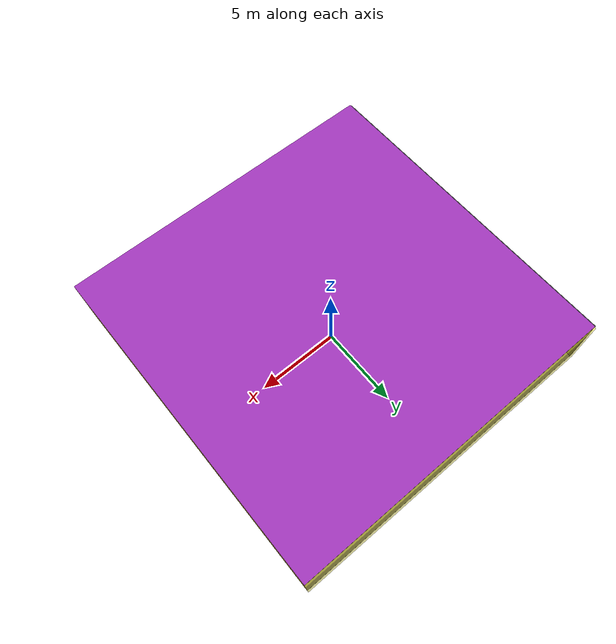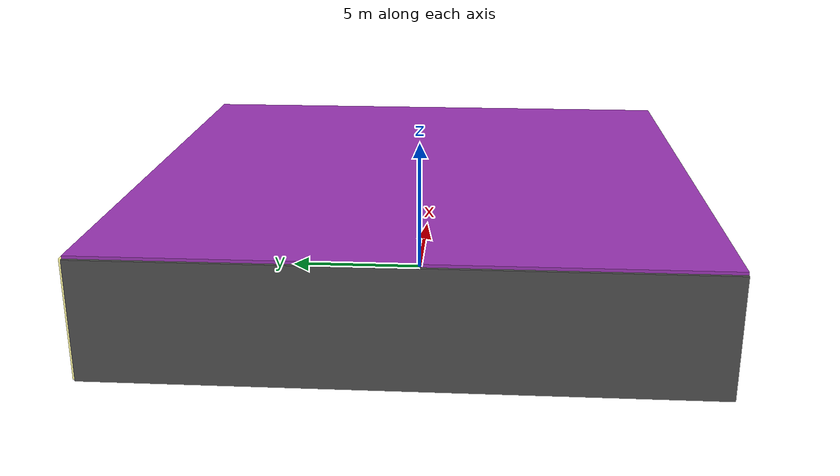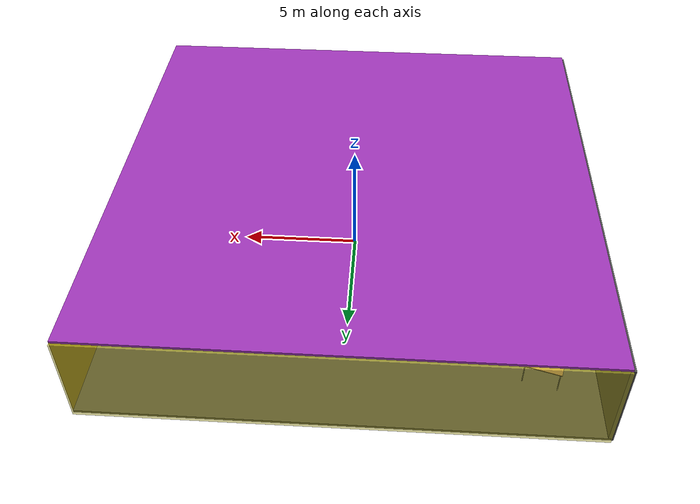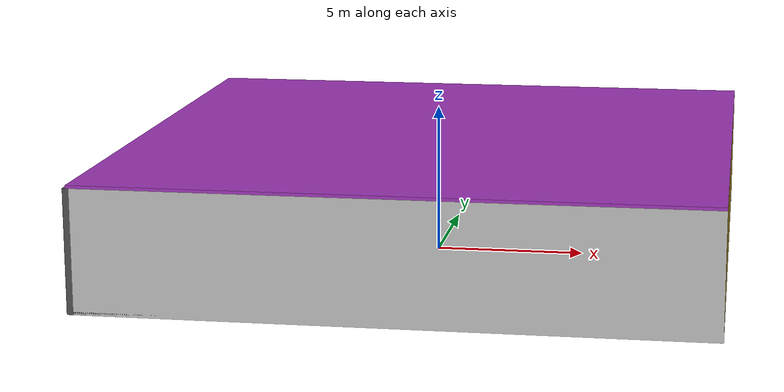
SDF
<sdf version="1.4">
 <world name="default">
  <physics type="ode">
   <max_step_size>0.001</max_step_size>
   <real_time_factor>1</real_time_factor>
   <real_time_update_rate>1000</real_time_update_rate>
   <gravity>0 0 -9.8</gravity>
  </physics>
  <scene><ambient>0.4 0.4 0.4 1</ambient><background>0.7 0.7 0.7 1</background><shadows>1</shadows></scene>
  <model name="Surrounding">
   <static>1</static>
   <link name="Ceiling">
    <collision name="Ceiling_Collision"><geometry><box><size>20 20 0.1</size></box></geometry></collision>
    <visual name="Ceiling_Visual">
     <geometry><box><size>20 20 0.1</size></box></geometry>
     <material>
      <script><uri>file://media/materials/scripts/gazebo.material</uri><name>Gazebo/Purple</name></script>
     </material>
    </visual>
    <pose>0 0 4.05 0 0 0</pose>
   </link>
   <link name="Wall_South">
    <collision name="Wall_South_Collision">
     <geometry><box><size>20 0 4</size></box></geometry>
     <pose>0 0 2 0 -0 0</pose>
    </collision>
    <visual name="Wall_South_Visual">
     <pose>0 0 2 0 -0 0</pose>
     <geometry><box><size>20 0 4</size></box></geometry>
     <material>
      <script><uri>file://media/materials/scripts/gazebo.material</uri><name>Gazebo/PioneerBody</name></script>
     </material>
    </visual>
    <velocity_decay><linear>0</linear><angular>0</angular></velocity_decay>
    <pose>0 -10 0 0 -0 0</pose>
   </link>
   <link name="Wall_East">
    <collision name="Wall_21_Collision">
     <geometry><box><size>20 0 4</size></box></geometry>
     <pose>0 0 2 0 -0 0</pose>
    </collision>
    <visual name="Wall_21_Visual">
     <pose>0 0 2 0 -0 0</pose>
     <geometry><box><size>20 0 4</size></box></geometry>
     <material>
      <script><uri>file://media/materials/scripts/gazebo.material</uri><name>Gazebo/Gold</name></script>
     </material>
    </visual>
    <velocity_decay><linear>0</linear><angular>0</angular></velocity_decay>
    <pose>10 0 0 0 -0 1.5708</pose>
   </link>
   <link name="Wall_North">
    <collision name="Wall_22_Collision">
     <geometry><box><size>20 0.2 4</size></box></geometry>
     <pose>0 0 2 0 -0 0</pose>
    </collision>
    <visual name="Wall_22_Visual">
     <pose>0 0 2 0 -0 0</pose>
     <geometry><box><size>20 0.2 4</size></box></geometry>
     <material>
      <script>
       <uri>file://media/materials/scripts/gazebo.material</uri>
       <name>Gazebo/YellowTransparent</name>
      </script>
     </material>
    </visual>
    <velocity_decay><linear>0</linear><angular>0</angular></velocity_decay>
    <pose>0 10 0 0 -0 0</pose>
   </link>
   <link name="Wall_West">
    <collision name="Wall_23_Collision">
     <geometry><box><size>20 0.2 4</size></box></geometry>
     <pose>0 0 2 0 -0 0</pose>
    </collision>
    <visual name="Wall_23_Visual">
     <pose>0 0 2 0 -0 0</pose>
     <geometry><box><size>20 0.2 4</size></box></geometry>
     <material>
      <script><uri>file://media/materials/scripts/gazebo.material</uri><name>Gazebo/DarkGrey</name></script>
     </material>
    </visual>
    <velocity_decay><linear>0</linear><angular>0</angular></velocity_decay>
    <pose>-10 0 0 0 0 -1.5708</pose>
   </link>
   <link name="Ground_link">
    <collision name="collision">
     <pose>0 0 .05 0 -0 0</pose>
     <geometry><box><size>20 20 0.1</size></box></geometry>
    </collision>
    <visual name="visual">
     <pose>0 0 .05 0 -0 0</pose>
     <geometry><box><size>20 20 0.1</size></box></geometry>
     <material>
      <script><uri>file://media/materials/scripts/gazebo.material</uri><name>Gazebo/DarkGrey</name></script>
     </material>
    </visual>
   </link>
   <static>1</static>
  </model>
  <spherical_coordinates>
   <surface_model>EARTH_WGS84</surface_model>
   <latitude_deg>0</latitude_deg>
   <longitude_deg>0</longitude_deg>
   <elevation>0</elevation>
   <heading_deg>0</heading_deg>
  </spherical_coordinates>
  <light name="lightball_0" type="diffuse">
   <diffuse>0.8 0.8 0.8 1</diffuse>
   <specular>0.2 0.2 0.2 1</specular>
   <attenuation>
    <range>100</range>
    <constant>0.7</constant>
    <linear>0.01</linear>
    <quadratic>0.001</quadratic>
   </attenuation>
   <direction>-0.5 0.1 -0.9</direction>
   <pose>-0.400968287693 -1.57856504752 3.88790643571 0 0 0</pose>
  </light>
  <light name="lightball_1" type="diffuse">
   <diffuse>0.8 0.8 0.8 1</diffuse>
   <specular>0.2 0.2 0.2 1</specular>
   <attenuation>
    <range>100</range>
    <constant>0.7</constant>
    <linear>0.01</linear>
    <quadratic>0.001</quadratic>
   </attenuation>
   <direction>-0.5 0.1 -0.9</direction>
   <pose>4.07839323184 -3.81919445806 2.35253698298 0 0 0</pose>
  </light>
  <include><uri>model://table</uri><pose>-7.51177576161 4.8583964634 0 0 0 1.29641498938</pose></include>
  <include><uri>model://table</uri><pose>-7.73063512304 7.384270688 0 0 0 2.86953080561</pose></include>
  <include>
   <uri>model://construction_cone</uri>
   <pose>-1.51571116279 -6.84425266511 0 0 0 0.894742225814</pose>
  </include>
  <include><uri>model://cabinet</uri><pose>-1.42967434135 0.840865003484 0 0 0 3.08006084684</pose></include>
  <include>
   <uri>model://construction_cone</uri>
   <pose>-1.17236558736 4.91745304232 0 0 0 2.99273546818</pose>
  </include>
  <include>
   <uri>model://textured_shapes</uri>
   <pose>0.754836945867 -6.87068884521 0 0 0 1.62461459869</pose>
  </include>
 </world>
</sdf>

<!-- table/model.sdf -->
<sdf version="1.5">
  <model name="table">
    <static>true</static>
    <link name="link">
      <collision name="surface">
        <pose>0 0 1.0 0 0 0</pose>
        <geometry>
          <box>
            <size>1.5 0.8 0.03</size>
          </box>
        </geometry>
        <surface>
          <friction>
            <ode>
              <mu>0.6</mu>
              <mu2>0.6</mu2>
            </ode>
          </friction>
        </surface>
      </collision>
      <visual name="visual1">
        <pose>0 0 1.0 0 0 0</pose>
        <geometry>
          <box>
            <size>1.5 0.8 0.03</size>
          </box>
        </geometry>
        <material>
          <script>
            <uri>model://media/materials/scripts/gazebo.material</uri>
            <name>Gazebo/Wood</name>
          </script>
        </material>
      </visual>
      <collision name="front_left_leg">
        <pose>0.68 0.38 0.5 0 0 0</pose>
        <geometry>
          <cylinder>
            <radius>0.02</radius>
            <length>1.0</length>
          </cylinder>
        </geometry>
      </collision>
      <visual name="front_left_leg">
        <pose>0.68 0.38 0.5 0 0 0</pose>
        <geometry>
          <cylinder>
            <radius>0.02</radius>
            <length>1.0</length>
          </cylinder>
        </geometry>
        <material>
          <script>
            <uri>model://media/materials/scripts/gazebo.material</uri>
            <name>Gazebo/Grey</name>
          </script>
        </material>
      </visual>
      <collision name="front_right_leg">
        <pose>0.68 -0.38 0.5 0 0 0</pose>
        <geometry>
          <cylinder>
            <radius>0.02</radius>
            <length>1.0</length>
          </cylinder>
        </geometry>
      </collision>
      <visual name="front_right_leg">
        <pose>0.68 -0.38 0.5 0 0 0</pose>
        <geometry>
          <cylinder>
            <radius>0.02</radius>
            <length>1.0</length>
          </cylinder>
        </geometry>
        <material>
          <script>
            <uri>model://media/materials/scripts/gazebo.material</uri>
            <name>Gazebo/Grey</name>
          </script>
        </material>
      </visual>
      <collision name="back_right_leg">
        <pose>-0.68 -0.38 0.5 0 0 0</pose>
        <geometry>
          <cylinder>
            <radius>0.02</radius>
            <length>1.0</length>
          </cylinder>
        </geometry>
      </collision>
      <visual name="back_right_leg">
        <pose>-0.68 -0.38 0.5 0 0 0</pose>
        <geometry>
          <cylinder>
            <radius>0.02</radius>
            <length>1.0</length>
          </cylinder>
        </geometry>
        <material>
          <script>
            <uri>model://media/materials/scripts/gazebo.material</uri>
            <name>Gazebo/Grey</name>
          </script>
        </material>
      </visual>
      <collision name="back_left_leg">
        <pose>-0.68 0.38 0.5 0 0 0</pose>
        <geometry>
          <cylinder>
            <radius>0.02</radius>
            <length>1.0</length>
          </cylinder>
        </geometry>
      </collision>
      <visual name="back_left_leg">
        <pose>-0.68 0.38 0.5 0 0 0</pose>
        <geometry>
          <cylinder>
            <radius>0.02</radius>
            <length>1.0</length>
          </cylinder>
        </geometry>
        <material>
          <script>
            <uri>model://media/materials/scripts/gazebo.material</uri>
            <name>Gazebo/Grey</name>
          </script>
        </material>
      </visual>
    </link>
  </model>
</sdf>

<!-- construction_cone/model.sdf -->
<sdf version="1.5">
  <model name="Construction Cone">
    <link name="link">
      <collision name="collision">
        <geometry>
          <mesh>
            <scale>10 10 10</scale>
            <uri>file://isr-testbed/construction_cone/meshes/construction_cone.dae</uri>
          </mesh>
        </geometry>
      </collision>
      <visual name="visual">
        <geometry>
          <mesh>
            <scale>10 10 10</scale>
            <uri>file://isr-testbed/construction_cone/meshes/construction_cone.dae</uri>
          </mesh>
        </geometry>
      </visual>
    </link>
  </model>
</sdf>

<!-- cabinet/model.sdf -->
<sdf version="1.5">
  <model name="cabinet">
    <static>true</static>
    <link name="cabinet_bottom_plate">
      <inertial>
        <pose>0 0 -1 0 0 0</pose>
        <inertia>
          <ixx>2.050000</ixx>
          <ixy>0</ixy>
          <ixz>0</ixz>
          <iyy>2.050000</iyy>
          <iyz>0</iyz>
          <izz>2.050000</izz>
        </inertia>
        <mass>25.000000</mass>
      </inertial>
      <collision name="cabinet_bottom_plate_geom">
        <pose>0 0 0.010000 0 0 0</pose>
        <geometry>
          <box>
            <size>0.450000 0.450000 0.020000</size>
          </box>
        </geometry>
      </collision>
      <visual name="cabinet_bottom_plate_geom_visual">
        <pose>0 0 0.010000 0 0 0</pose>
        <geometry>
          <box>
            <size>0.450000 0.450000 0.020000</size>
          </box>
        </geometry>
        <material>
          <script>
            <uri>model://media/materials/scripts/gazebo.material</uri>
            <name>Gazebo/Wood</name>
          </script>
        </material>
      </visual>
      <collision name="cabinet_bottom_plate_geom_cabinet_back_plate">
        <pose>0.235000 0 0.510000 0 0 0</pose>
        <geometry>
          <box>
            <size>0.020000 0.450000 1.020000</size>
          </box>
        </geometry>
      </collision>
      <visual name="cabinet_bottom_plate_geom_cabinet_back_plate_visual">
        <pose>0.235000 0 0.510000 0 0 0</pose>
        <geometry>
          <box>
            <size>0.020000 0.450000 1.020000</size>
          </box>
        </geometry>
        <material>
          <script>
            <uri>model://media/materials/scripts/gazebo.material</uri>
            <name>Gazebo/Wood</name>
          </script>
        </material>
      </visual>
      <collision name="cabinet_bottom_plate_geom_cabinet_left_plate">
        <pose>0 0.235000 0.510000 0 0 0</pose>
        <geometry>
          <box>
            <size>0.450000 0.020000 1.020000</size>
          </box>
        </geometry>
      </collision>
      <visual name="cabinet_bottom_plate_geom_cabinet_left_plate_visual">
        <pose>0 0.235000 0.510000 0 0 0</pose>
        <geometry>
          <box>
            <size>0.450000 0.020000 1.020000</size>
          </box>
        </geometry>
        <material>
          <script>
            <uri>model://media/materials/scripts/gazebo.material</uri>
            <name>Gazebo/Wood</name>
          </script>
        </material>
      </visual>
      <collision name="cabinet_bottom_plate_geom_cabinet_middle_plate">
        <pose>0 0 0.510000 0 0 0</pose>
        <geometry>
          <box>
            <size>0.450000 0.450000 0.020000</size>
          </box>
        </geometry>
      </collision>
      <visual name="cabinet_bottom_plate_geom_cabinet_middle_plate_visual">
        <pose>0 0 0.510000 0 0 0</pose>
        <geometry>
          <box>
            <size>0.450000 0.450000 0.020000</size>
          </box>
        </geometry>
        <material>
          <script>
            <uri>model://media/materials/scripts/gazebo.material</uri>
            <name>Gazebo/Wood</name>
          </script>
        </material>
      </visual>
      <collision name="cabinet_bottom_plate_geom_cabinet_right_plate">
        <pose>0 -0.235000 0.510000 0 0 0</pose>
        <geometry>
          <box>
            <size>0.450000 0.020000 1.020000</size>
          </box>
        </geometry>
      </collision>
      <visual name="cabinet_bottom_plate_geom_cabinet_right_plate_visual">
        <pose>0 -0.235000 0.510000 0 0 0</pose>
        <geometry>
          <box>
            <size>0.450000 0.020000 1.020000</size>
          </box>
        </geometry>
        <material>
          <script>
            <uri>model://media/materials/scripts/gazebo.material</uri>
            <name>Gazebo/Wood</name>
          </script>
        </material>
      </visual>
      <collision name="cabinet_bottom_plate_geom_cabinet_top_plate">
        <pose>0 0 1.010000 0 0 0</pose>
        <geometry>
          <box>
            <size>0.450000 0.450000 0.020000</size>
          </box>
        </geometry>
      </collision>
      <visual name="cabinet_bottom_plate_geom_cabinet_top_plate_visual">
        <pose>0 0 1.010000 0 0 0</pose>
        <geometry>
          <box>
            <size>0.450000 0.450000 0.020000</size>
          </box>
        </geometry>
        <material>
          <script>
            <uri>model://media/materials/scripts/gazebo.material</uri>
            <name>Gazebo/Wood</name>
          </script>
        </material>
      </visual>
    </link>
  </model>
</sdf>

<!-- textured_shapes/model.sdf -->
<sdf version="1.6">
  <model name="textured_shapes">
    <pose>0 0 0.5 0 0 0</pose>
    <link name="box">
      <pose>0 -1.5 0 0 0 0</pose>
      <collision name="collision">
        <geometry>
          <box>
            <size>1 1 1</size>
          </box>
        </geometry>
      </collision>
      <visual name="visual">
        <geometry>
          <box>
            <size>1 1 1</size>
          </box>
        </geometry>
        <material>
          <script>
            <uri>model://../model_source/models/textured_shapes/materials/scripts</uri>
            <uri>model://../model_source/models/textured_shapes/materials/textures</uri>
            <name>TexturedShape/Squares</name>
          </script>
        </material>
      </visual>
    </link>
    <link name="sphere">
      <collision name="collision">
        <geometry>
          <sphere>
            <radius>0.5</radius>
          </sphere>
        </geometry>
      </collision>
      <visual name="visual">
        <geometry>
          <sphere>
            <radius>0.5</radius>
          </sphere>
        </geometry>
        <material>
          <script>
            <uri>model://../model_source/models/textured_shapes/materials/scripts</uri>
            <uri>model://../model_source/models/textured_shapes/materials/textures</uri>
            <name>TexturedShape/Squares</name>
          </script>
        </material>
      </visual>
    </link>
    <link name="cylinder">
      <pose>0 1.5 0 0 0 0</pose>
      <collision name="collision">
        <geometry>
          <cylinder>
            <radius>0.5</radius>
            <length>1</length>
          </cylinder>
        </geometry>
      </collision>
      <visual name="visual">
        <geometry>
          <cylinder>
            <radius>0.5</radius>
            <length>1</length>
          </cylinder>
        </geometry>
        <material>
          <script>
            <uri>model://../model_source/models/textured_shapes/materials/scripts</uri>
            <uri>model://../model_source/models/textured_shapes/materials/textures</uri>
            <name>TexturedShape/Squares</name>
          </script>
        </material>
      </visual>
    </link>
  </model>
</sdf>
